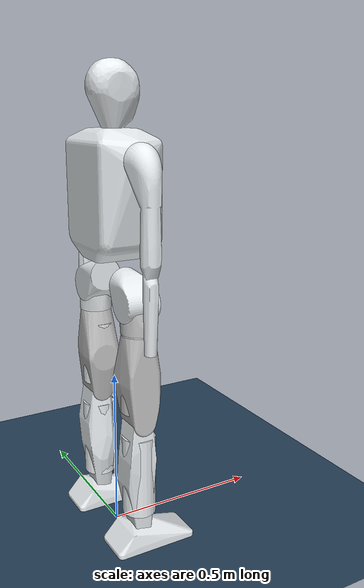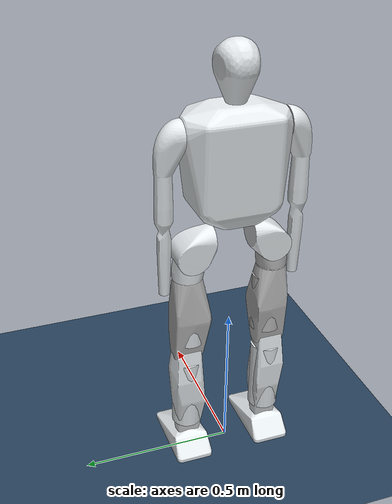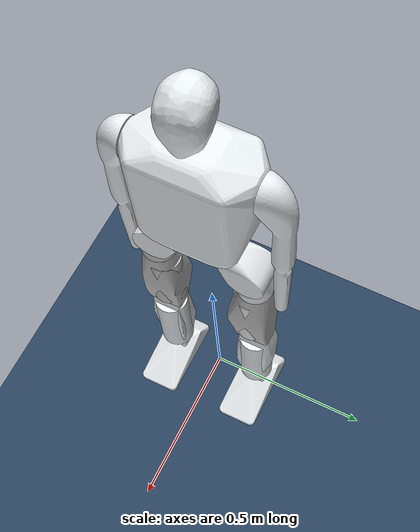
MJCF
<mujoco model="hhfc">
  <compiler angle="radian" meshdir="../meshes/" eulerseq="zyx" />
  <statistic meansize="0.201559" extent="2.948112" center="0.00499457 0 0.337764"/>

  <default>
      <joint limited='true'/>
      <motor ctrllimited='true'/>
      <geom  condim='4' contype="1" conaffinity="15" solref='0.001 2' friction='0.9 0.2 0.2'/>
      <equality solref='0.001 2'/>
      <default class='visualgeom'>
          <geom material='visualgeom' condim='1' contype='0' conaffinity='0'/>
      </default>
      <default class='visualgeom2'>
          <geom material='visualgeom2' condim='1' contype='0' conaffinity='0'/>
      </default>
      <default class='obstacle'>
          <geom material='obstacle' condim='3' contype='1' conaffinity='15'/>
      </default>
      <default class='leg_joint_param'>
          <joint damping="0.0" frictionloss="0.0" armature="0.0"/>
      </default>
  </default>

  <asset>
    <!-- Set ground -->
    <texture name="grid" type="2d" builtin="checker" width="512" height="512" rgb1=".1 .2 .3" rgb2=".2 .3 .4"/>
    <material name="grid" texture="grid" texrepeat="1 1" texuniform="true" reflectance=".2"/>
  </asset>

  <option timestep="0.001" integrator="RK4">
    <flag sensornoise="enable" frictionloss="enable" />
  </option>

  <visual>
    <map stiffness="300" force="0.1" zfar="30"/>
    <rgba haze="0.15 0.25 0.35 1"/>
    <global offwidth="2560" offheight="1440" elevation="-30" azimuth="120"/>
  </visual>

  <asset>
    <mesh name="base_thorax" file="base_thorax.STL"/>
    <mesh name="Lleg_hip_p" file="Lleg_hip_p.STL"/>
    <mesh name="Lleg_hip_r" file="Lleg_hip_r.STL"/>
    <mesh name="Lleg_hip_y" file="Lleg_hip_y.STL"/>
    <mesh name="Lleg_knee" file="Lleg_knee.STL"/>
    <mesh name="Lleg_ankle_p" file="Lleg_ankle_p.STL"/>
    <mesh name="Lleg_ankle_r" file="Lleg_ankle_r.STL"/>
    <mesh name="Rleg_hip_p" file="Rleg_hip_p.STL"/>
    <mesh name="Rleg_hip_r" file="Rleg_hip_r.STL"/>
    <mesh name="Rleg_hip_y" file="Rleg_hip_y.STL"/>
    <mesh name="Rleg_knee" file="Rleg_knee.STL"/>
    <mesh name="Rleg_ankle_p" file="Rleg_ankle_p.STL"/>
    <mesh name="Rleg_ankle_r" file="Rleg_ankle_r.STL"/>
    <mesh name="Larm_shoulder_p" file="Larm_shoulder_p.STL"/>
    <mesh name="Rarm_shoulder_p" file="Rarm_shoulder_p.STL"/>
  </asset>

  <worldbody>
    <!-- Main Light Source -->
    <light name="main_light" diffuse="2 2 2" specular="0.5 0.5 0.5" pos="0 0 40" dir="0 0 -1" castshadow="true"/>
    <!-- Auxiliary Light Sources-->
    <light name="aux_light1" diffuse=".8 .8 .8" pos=" 10 0 1" dir="-1 0 0" castshadow="false"/>
    <light name="aux_light2" diffuse=".8 .8 .8" pos="-10 0 1" dir=" 1 0 0" castshadow="false"/>
    <light name="aux_light3" diffuse=".8 .8 .8" pos="0  10 1" dir="0 -1 0" castshadow="false"/>
    <light name="aux_light4" diffuse=".8 .8 .8" pos="0 -10 1" dir="0  1 0" castshadow="false"/>
    <!-- Floor -->
    <geom name="floor" type="plane" size="10 10 0.05" material="grid"/>

    <body name="base_thorax" pos="0 0 0.9" euler="0 0 0">
      <inertial pos="0.0071545 -0.00014864 0.10711" mass="21.754" fullinertia="0.096973 0.056865 0.10587 -2.6251E-05 0.00041701 2.8904E-05"/>
      <freejoint name="base_thorax"/>
      <geom size="0.2 0.175 0.3" pos="0 0 0.2" type="box" rgba="0.89804 0.91765 0.92941 0"/>
      <geom type="mesh" contype="0" conaffinity="0" group="1" density="0" rgba="0.89804 0.91765 0.92941 1" mesh="base_thorax"/>
      <site name="imu_site" pos="0 0 0" size="0.02" rgba="1 0 0 1" type="sphere"/>
      <site name='imu' size='0.01' pos='0.0 0 0.0'/>
      <body name="Lleg_hip_p" pos="0.0074413 0.070763 -0.096701" quat="1 -1.49195e-05 9.221e-11 -6.1805e-06">
        <inertial pos="-0.0065868 0.038281 -0.019058" quat="0.689291 0.159395 -0.159229 0.688562" mass="0.79889" diaginertia="0.00162063 0.0016035 0.00132837"/>
        <joint name="Lleg_hip_p_joint" pos="0 0 0" axis="0 -1 0" range="-1.5708 3.1416" actuatorfrcrange="-250 250"/>
        <geom type="mesh" contype="0" conaffinity="0" group="1" density="0" rgba="0.89804 0.91765 0.92941 1" mesh="Lleg_hip_p"/>

        <body name="Lleg_hip_r" pos="-0.048264 0.063739 -0.039998" quat="1 -1.49194e-05 -1.55901e-05 6.18077e-06">
          <inertial pos="0.041051 0.0017918 -0.012588" quat="0.794556 0.60374 -0.0545298 0.0347217" mass="2.2937" diaginertia="0.00245553 0.0018219 0.00168278"/>
          <joint name="Lleg_hip_r_joint" pos="0 0 0" axis="1 0 0" range="-0.12217 0.52359" actuatorfrcrange="-100 100"/>
          <geom type="mesh" contype="0" conaffinity="0" group="1" density="0" rgba="0.89804 0.91765 0.92941 1" mesh="Lleg_hip_r"/>
          <geom size="0.05 0.1" pos="0.05 0 -0.225" type="cylinder" rgba="0.89804 0.91765 0.92941 1"/>

          <body name="Lleg_hip_y" pos="0.048263 0.0075949 -0.073228" quat="1 -0.0006421 0 0">
            <inertial pos="0.0012764 -0.012311 -0.11618" quat="0.695183 -0.0722459 0.00468686 0.715178" mass="4.5531" diaginertia="0.00732582 0.00604015 0.00428763"/>
            <joint name="Lleg_hip_y_joint" pos="0 0 0" axis="0 0 1" range="-1.0472 1.2217" actuatorfrcrange="-100 100"/>
            <geom type="mesh" contype="0" conaffinity="0" group="1" density="0" rgba="0.75294 0.75294 0.75294 1" mesh="Lleg_hip_y"/>

            <body name="Lleg_knee" pos="0 0 -0.27926">
              <inertial pos="-0.0071953 0.00012337 -0.15866" quat="0.705841 -0.00283084 0.00774909 0.708322" mass="4.1746" diaginertia="0.0171054 0.0159176 0.00207267"/>
              <joint name="Lleg_knee_joint" pos="0 0 0" axis="0 -1 0" range="-1.5708 0" actuatorfrcrange="-250 250"/>
              <geom type="mesh" contype="0" conaffinity="0" group="1" density="0" rgba="0.89804 0.91765 0.92941 1" mesh="Lleg_knee"/>
              <geom size="0.05 0.125" pos="0 0 -0.175" type="cylinder" rgba="0.89804 0.91765 0.92941 1"/>

              <body name="Lleg_ankle_p" pos="0 0 -0.35">
                <inertial pos="0.0010341 -8.5615e-08 7.218e-08" quat="0.500022 0.499956 -0.500017 0.500004" mass="0.15381" diaginertia="4.3137e-05 2.9623e-05 2.6222e-05"/>
                <joint name="Lleg_ankle_p_joint" pos="0 0 0" axis="0 1 0" range="-0.698132 0.698132" actuatorfrcrange="-100 100"/>
                <geom type="mesh" contype="0" conaffinity="0" group="1" density="0" rgba="0.89804 0.91765 0.92941 1" mesh="Lleg_ankle_p"/>

                <body name="Lleg_ankle_r">
                  <inertial pos="0.021653 2.4677e-08 -0.044273" quat="-2.3025e-06 0.722358 2.2042e-06 0.691519" mass="0.87283" diaginertia="0.00399262 0.0029662 0.00124638"/>
                  <joint name="Lleg_ankle_r_joint" pos="0 0 0" axis="1 0 0" range="-0.349066 0.349066" actuatorfrcrange="-100 100"/>
                  <geom type="mesh" contype="0" conaffinity="0" group="1" density="0" rgba="0.89804 0.91765 0.92941 1" mesh="Lleg_ankle_r"/>
                  <geom name="Lleg_ankle_r" type="mesh" rgba="0.89804 0.91765 0.92941 1" mesh="Lleg_ankle_r"/>
                </body>
              </body>
            </body>
          </body>
        </body>
      </body>

      <body name="Rleg_hip_p" pos="0.0074402 -0.070762 -0.096701" quat="1 1.49195e-05 -9.221e-11 -6.1805e-06">
        <inertial pos="-0.0065825 -0.038282 -0.019058" quat="0.688727 -0.159254 0.159385 0.689122" mass="0.79889" diaginertia="0.00162064 0.0016035 0.00132836"/>
        <joint name="Rleg_hip_p_joint" pos="0 0 0" axis="0 -1 0" range="-1.5708 3.1416" actuatorfrcrange="-250 250"/>
        <geom type="mesh" contype="0" conaffinity="0" group="1" density="0" rgba="0.89804 0.91765 0.92941 1" mesh="Rleg_hip_p"/>
        <body name="Rleg_hip_r" pos="-0.048261 -0.063738 -0.039998" quat="1 -1.49194e-05 -1.55901e-05 6.18077e-06">
          <inertial pos="0.040804 -0.0018825 -0.012645" quat="0.601911 0.796001 -0.0328958 0.0547996" mass="2.2802" diaginertia="0.00245492 0.00182183 0.00168105"/>
          <joint name="Rleg_hip_r_joint" pos="0 0 0" axis="1 0 0" range="-0.52359 0.12217" actuatorfrcrange="-100 100"/>
          <geom type="mesh" contype="0" conaffinity="0" group="1" density="0" rgba="0.75294 0.75294 0.75294 1" mesh="Rleg_hip_r"/>
          <geom size="0.05 0.1" pos="0.05 0 -0.225" type="cylinder" rgba="0.75294 0.75294 0.75294 1"/>
          <body name="Rleg_hip_y" pos="0.048263 -0.0075949 -0.073228" quat="1 -0.0006421 1.559e-05 1.00103e-08">
            <inertial pos="0.0012764 0.012311 -0.11618" quat="0.715443 0.00472894 -0.072901 0.694841" mass="4.5154" diaginertia="0.00726745 0.00600923 0.00425672"/>
            <joint name="Rleg_hip_y_joint" pos="0 0 0" axis="0 0 1" range="-1.2217 1.0472" actuatorfrcrange="-100 100"/>
            <geom type="mesh" contype="0" conaffinity="0" group="1" density="0" rgba="0.75294 0.75294 0.75294 1" mesh="Rleg_hip_y"/>
            <body name="Rleg_knee" pos="0 0 -0.27926">
              <inertial pos="-0.0071953 -0.00012337 -0.15866" quat="0.708482 0.00772113 -0.00291281 0.70568" mass="4.1724" diaginertia="0.0171044 0.0159176 0.00207196"/>
              <joint name="Rleg_knee_joint" pos="0 0 0" axis="0 -1 0" range="-1.5708 0" actuatorfrcrange="-250 250"/>
              <geom type="mesh" contype="0" conaffinity="0" group="1" density="0" rgba="0.89804 0.91765 0.92941 1" mesh="Rleg_knee"/>
              <geom size="0.05 0.125" pos="0 0 -0.175" type="cylinder" rgba="0.89804 0.91765 0.92941 1"/>
              <body name="Rleg_ankle_p" pos="0 0 -0.35">
                <inertial pos="0.0010341 8.5615e-08 7.218e-08" quat="0.500017 0.500004 -0.500022 0.499956" mass="0.15381" diaginertia="4.3137e-05 2.9623e-05 2.6222e-05"/>
                <joint name="Rleg_ankle_p_joint" pos="0 0 0" axis="0 1 0" range="-0.698132 0.698132" actuatorfrcrange="-100 100"/>
                <geom type="mesh" contype="0" conaffinity="0" group="1" density="0" rgba="0.89804 0.91765 0.92941 1" mesh="Rleg_ankle_p"/>
                <body name="Rleg_ankle_r">
                  <inertial pos="0.021653 -2.4677e-08 -0.044273" quat="-2.30337e-06 0.722358 2.20503e-06 0.691519" mass="0.87283" diaginertia="0.00399262 0.0029662 0.00124638"/>
                  <joint name="Rleg_ankle_r_joint" pos="0 0 0" axis="1 0 0" range="-0.349066 0.349066" actuatorfrcrange="-100 100"/>
                  <geom type="mesh" contype="0" conaffinity="0" group="1" density="0" rgba="0.89804 0.91765 0.92941 1" mesh="Rleg_ankle_r"/>
                  <geom name="Rleg_ankle_r" type="mesh" rgba="0.89804 0.91765 0.92941 1" mesh="Rleg_ankle_r"/>
                </body>
              </body>
            </body>
          </body>
        </body>
      </body>

      <body name="Larm_shoulder_p" pos="0.0074411 0.17676 0.2503" quat="1 -1.559e-05 0 0">
        <inertial pos="-4.1326e-06 0.029486 -0.15771" quat="0.705254 0.0509776 -0.0509816 0.705279" mass="0.8019" diaginertia="0.0017784 0.001659 0.000521319"/>
        <joint name="Larm_shoulder_p_joint" pos="0 0 0" axis="0 -1 0" range="-3.1416 3.1416" actuatorfrcrange="-100 100"
                />
        <geom type="mesh" contype="0" conaffinity="0" group="1" density="0" rgba="0.89804 0.91765 0.92941 1" mesh="Larm_shoulder_p"/>
      </body>

      <body name="Rarm_shoulder_p" pos="0.0074404 -0.17676 0.2503" quat="1 1.55905e-05 0.0008107 -1.26392e-08">
        <inertial pos="0.00015217 -0.029574 -0.15842" quat="0.705279 -0.0512999 0.0506465 0.705255" mass="0.80628" diaginertia="0.0017788 0.0016592 0.000521562"/>
        <joint name="Rarm_shoulder_p_joint" pos="0 0 0" axis="0 -1 0" range="-3.1416 3.1416" actuatorfrcrange="-100 100"
                />
        <geom type="mesh" contype="0" conaffinity="0" group="1" density="0" rgba="0.89804 0.91765 0.92941 1" mesh="Rarm_shoulder_p"/>
      </body>
    </body>

  </worldbody>

  <contact>

  </contact>

  <actuator>
    <motor name="Lleg_hip_p_joint"   joint="Lleg_hip_p_joint"   gear="1" ctrllimited="true" ctrlrange="-200 200"/>
    <motor name="Lleg_hip_r_joint"  joint="Lleg_hip_r_joint"  gear="1" ctrllimited="true" ctrlrange="-200 200"/>
    <motor name="Lleg_hip_y_joint"  joint="Lleg_hip_y_joint"  gear="1" ctrllimited="true" ctrlrange="-200 200"/>
    <motor name="Lleg_knee_joint"  joint="Lleg_knee_joint"  gear="1" ctrllimited="true" ctrlrange="-200 200"/>
    <motor name="Lleg_ankle_p_joint"   joint="Lleg_ankle_p_joint"   gear="1" ctrllimited="true" ctrlrange="-200 200"/>
    <motor name="Lleg_ankle_r_joint"  joint="Lleg_ankle_r_joint"  gear="1" ctrllimited="true" ctrlrange="-200 200"/>

    <motor name="Rleg_hip_p_joint"  joint="Rleg_hip_p_joint"  gear="1" ctrllimited="true" ctrlrange="-200 200"/>
    <motor name="Rleg_hip_r_joint"  joint="Rleg_hip_r_joint"  gear="1" ctrllimited="true" ctrlrange="-200 200"/>
    <motor name="Rleg_hip_y_joint"  joint="Rleg_hip_y_joint"  gear="1" ctrllimited="true" ctrlrange="-200 200"/>
    <motor name="Rleg_knee_joint"  joint="Rleg_knee_joint"  gear="1" ctrllimited="true" ctrlrange="-200 200"/>
    <motor name="Rleg_ankle_p_joint"   joint="Rleg_ankle_p_joint"   gear="1" ctrllimited="true" ctrlrange="-200 200"/>
    <motor name="Rleg_ankle_r_joint"  joint="Rleg_ankle_r_joint"  gear="1" ctrllimited="true" ctrlrange="-200 200"/>

    <motor name="Larm_shoulder_p_joint"  joint="Larm_shoulder_p_joint"  gear="1" ctrllimited="true" ctrlrange="-200 200"/>
    <motor name="Rarm_shoulder_p_joint"  joint="Rarm_shoulder_p_joint"  gear="1" ctrllimited="true" ctrlrange="-200 200"/>
  </actuator>

  <sensor>
    <accelerometer name="imu_acc" site="imu_site" />
    <gyro name="imu_gyro" site="imu_site" />
    <framepos name="imu_pos" objtype="site" objname="imu_site" />
    <framelinvel name="imu_linvel" objtype="site" objname="imu_site" />

    <framequat     name='orientation' objtype='site' noise='0.001' objname='imu'/>
    <framepos     name='position' objtype='site' noise='0.001' objname='imu'/>
    <gyro          name='angular-velocity'    site='imu' noise='0.005' cutoff='34.9'/>
    <velocimeter   name='linear-velocity'     site='imu' noise='0.001' cutoff='30'/>
    <accelerometer name='linear-acceleration' site='imu' noise='0.005' cutoff='157'/>
    <magnetometer  name='magnetometer'        site='imu'/>
  </sensor>
</mujoco>
